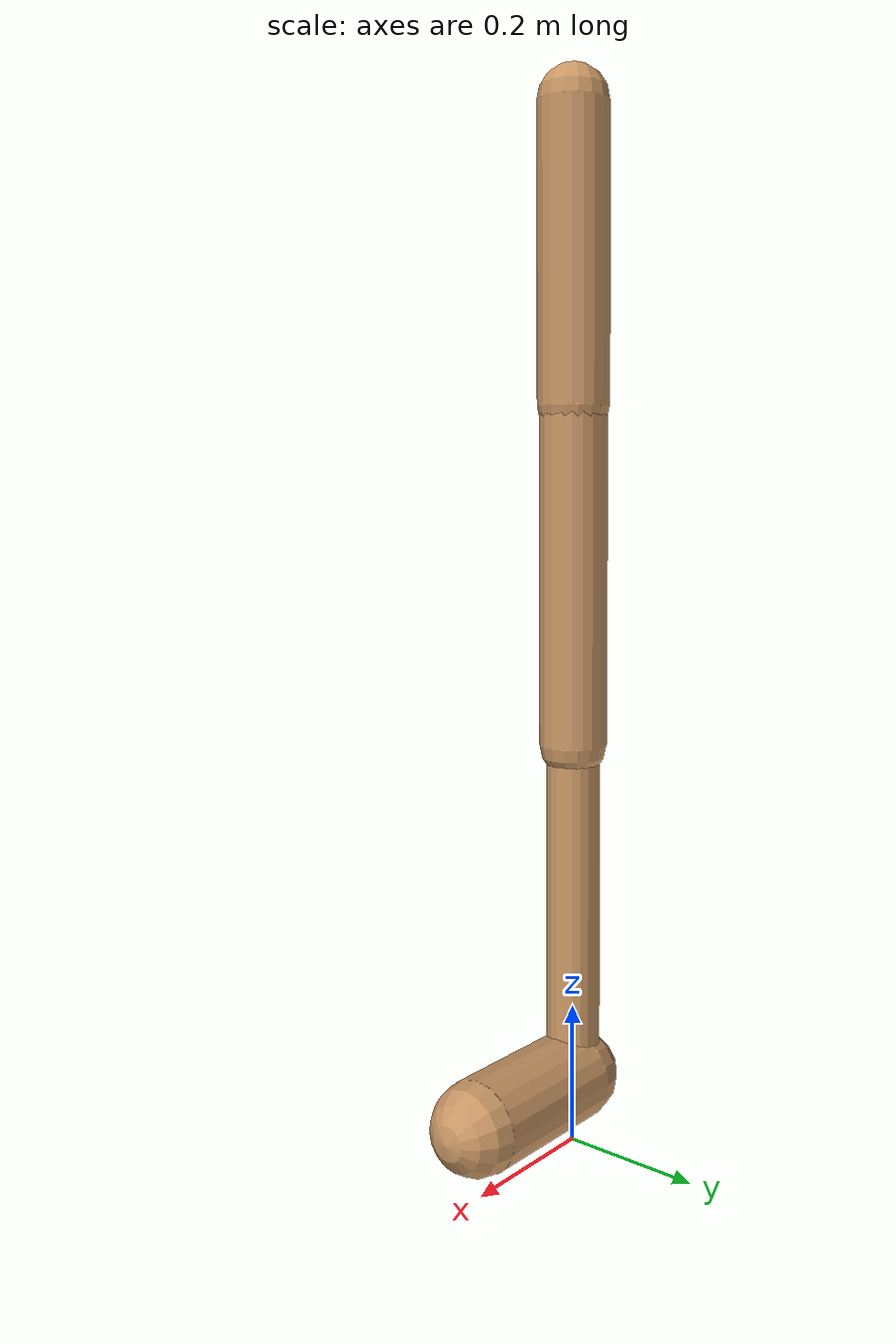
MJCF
<mujoco model="walker2d">
  <compiler angle="degree" coordinate="global" inertiafromgeom="true" />
  <default>
    <joint armature="0.01" damping=".1" limited="true" />
    <geom conaffinity="0" condim="3" contype="1" density="1000" friction="0.8 .1 .1" rgba="0.8 0.6 .4 1" />
  </default>
  <option integrator="RK4" timestep="0.002" />
  <worldbody>

    <body name="torso" pos="0 0 0.0381551115432897">
      <joint armature="0" axis="1 0 0" damping="0" limited="false" name="ignorex" pos="0 0 0" stiffness="0" type="slide" />
      <joint armature="0" axis="0 0 1" damping="0" limited="false" name="ignorez" pos="0 0 0" ref="1.25" stiffness="0" type="slide" />
      <joint armature="0" axis="0 1 0" damping="0" limited="false" name="ignorey" pos="0 0 0" stiffness="0" type="hinge" />
      <geom fromto="0 0 1.45 0 0 1.05" name="torso_geom" size="0.049647680243831975" type="capsule" />
      <body name="thigh">
        <joint axis="0 -1 0" name="thigh_joint" pos="0 0 1.05" range="-150 0" type="hinge" />
        <geom fromto="0.0 0.0 1.05 0.0 0.0 0.5819265261110733" name="thigh_geom" size="0.04708208350886583" type="capsule" />
        <body name="leg" pos="0.0 0.0 -0.01807347388892666">
          <joint axis="0 -1 0" name="leg_joint" pos="0 0 0.6" range="-150 0" type="hinge" />
          <geom fromto="0.0 0.0 0.6 0.0 0.0 0.07991836234563701" name="leg_geom" size="0.03766566680709266" type="capsule" />
          <body name="foot" pos="0.0 0.0 -0.020081637654362994">
            <joint axis="0 -1 0" name="foot_joint" pos="0 0 0.1" range="-45 45" type="hinge" />
            <geom fromto="-0.0 0.0 0.1 0.20610673078522768 0.0 0.1" name="foot_geom" size="0.06383814636121912" type="capsule" />
          </body>
        </body>
      </body>

      <body name="thigh_left">
        <joint axis="0 -1 0" name="thigh_left_joint" pos="0 0 1.05" range="-150 0" type="hinge" />
        <geom fromto="0.0 0.0 1.05 0.0 0.0 0.5819265261110733" name="thigh_left_geom" rgba=".7 .3 .6 1" size="0.04708208350886583" type="capsule" />
        <body name="leg_left" pos="0.0 0.0 -0.01807347388892666">
          <joint axis="0 -1 0" name="leg_left_joint" pos="0 0 0.6" range="-150 0" type="hinge" />
          <geom fromto="0.0 0.0 0.6 0.0 0.0 0.07991836234563701" name="leg_left_geom" rgba=".7 .3 .6 1" size="0.03766566680709266" type="capsule" />
          <body name="foot_left" pos="0.0 0.0 -0.020081637654362994">
            <joint axis="0 -1 0" name="foot_left_joint" pos="0 0 0.1" range="-45 45" type="hinge" />
            <geom fromto="-0.0 0.0 0.1 0.20610673078522768 0.0 0.1" name="foot_left_geom" rgba=".7 .3 .6 1" size="0.06383814636121912" type="capsule" />
          </body>
        </body>
      </body>
    </body>
  </worldbody>
  <actuator>

    <motor ctrllimited="true" ctrlrange="-1.0 1.0" gear="100" joint="thigh_joint" />
    <motor ctrllimited="true" ctrlrange="-1.0 1.0" gear="100" joint="leg_joint" />
    <motor ctrllimited="true" ctrlrange="-1.0 1.0" gear="100" joint="foot_joint" />
    <motor ctrllimited="true" ctrlrange="-1.0 1.0" gear="100" joint="thigh_left_joint" />
    <motor ctrllimited="true" ctrlrange="-1.0 1.0" gear="100" joint="leg_left_joint" />
    <motor ctrllimited="true" ctrlrange="-1.0 1.0" gear="100" joint="foot_left_joint" />

  </actuator>
</mujoco>
